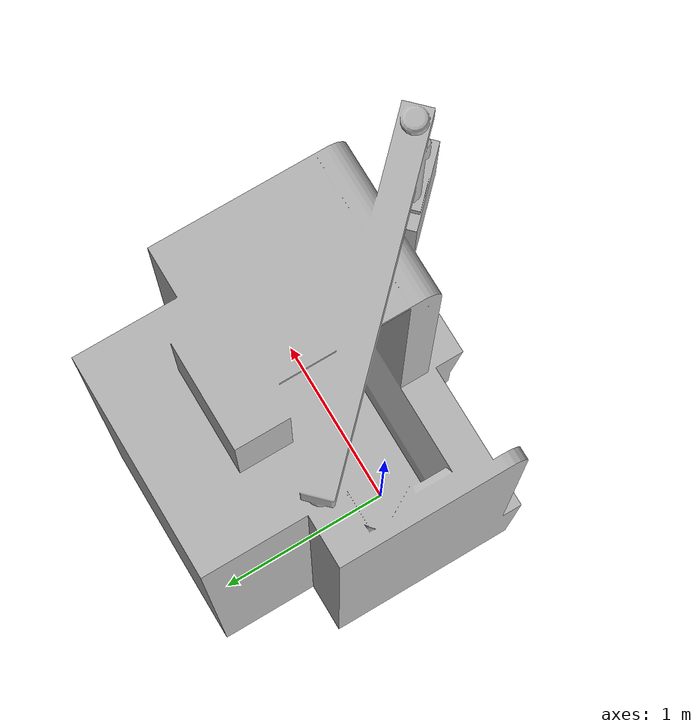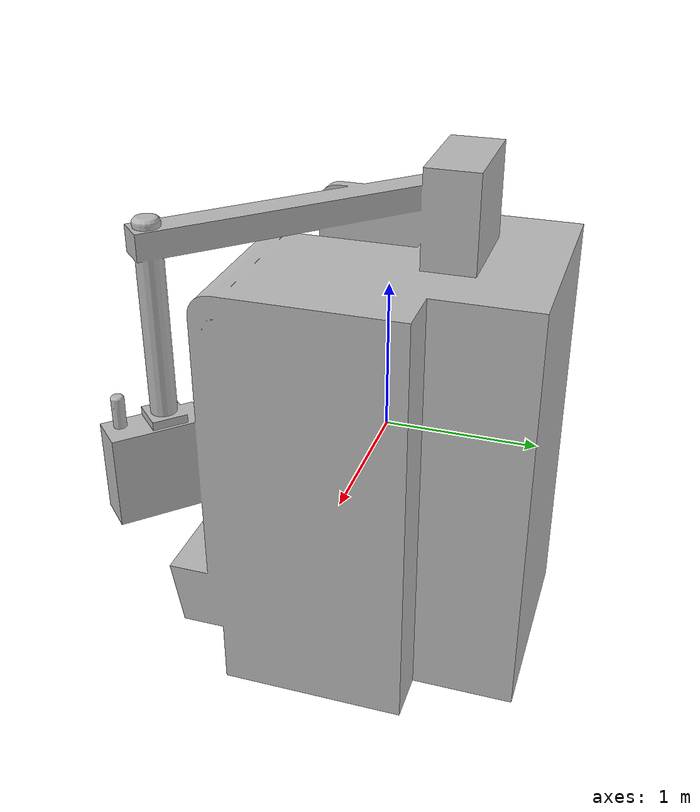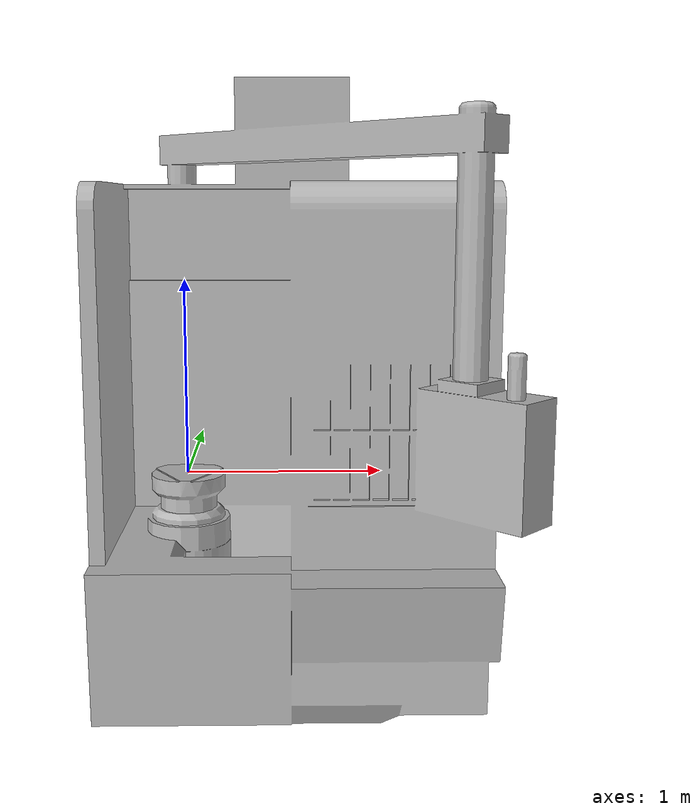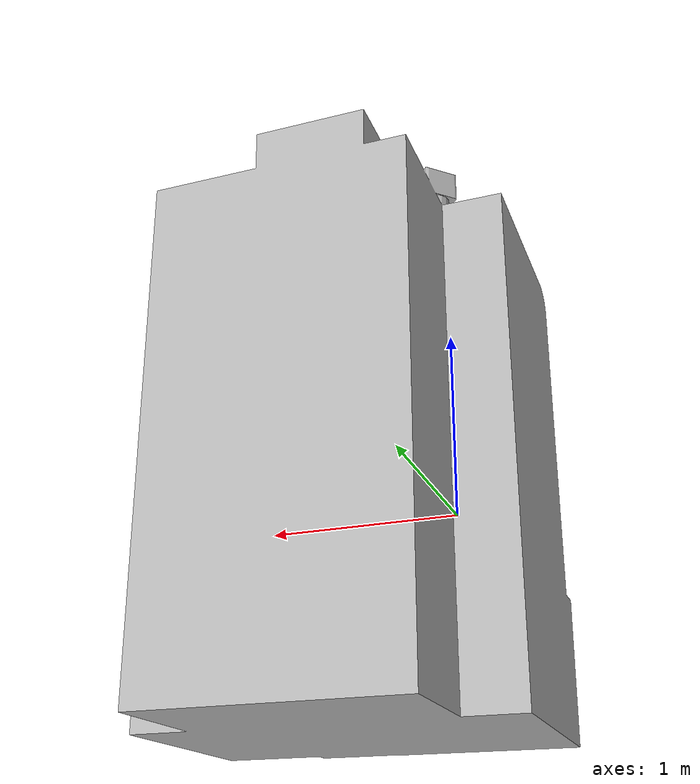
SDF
<?xml version="1.0" ?>
<sdf version="1.6">
  <model name="OKUMA V60R">
    <static>true</static>
    <link name="link">
      <visual name="visual">
        <geometry>
          <mesh>
            <uri>model://OKUMA V60R/meshes/OKUMA_V60R.obj</uri>
          </mesh>
        </geometry>
      </visual>
      <collision name="collision">
        <geometry>
          <mesh>
            <uri>model://OKUMA V60R/meshes/OKUMA_V60R.obj</uri>
          </mesh>
        </geometry>
      </collision>
    </link>
  </model>
</sdf>
